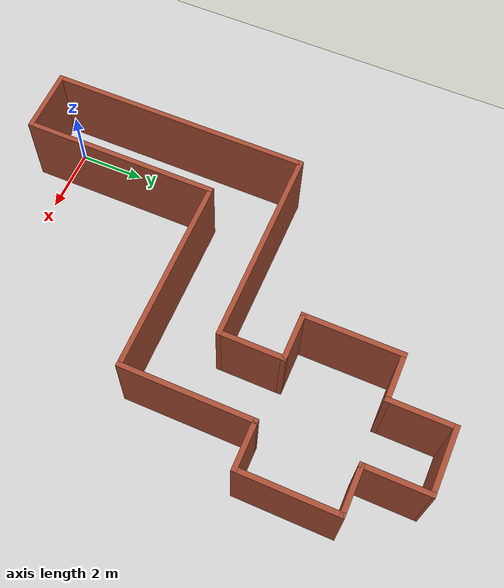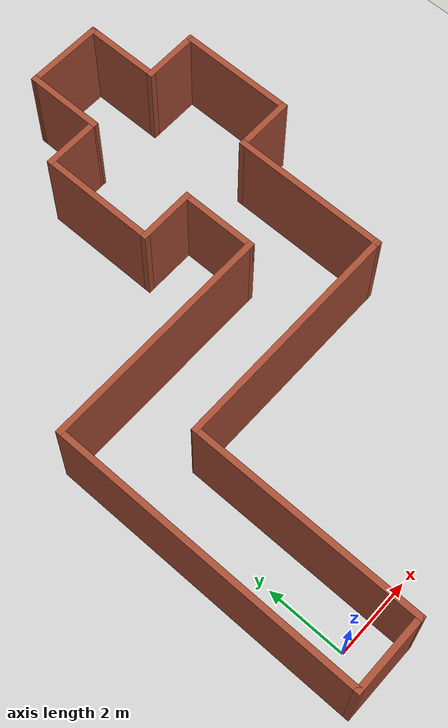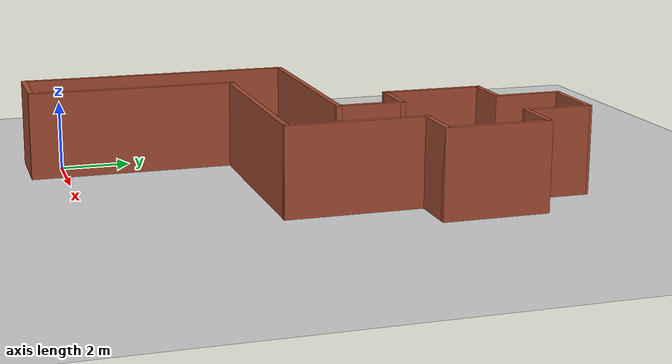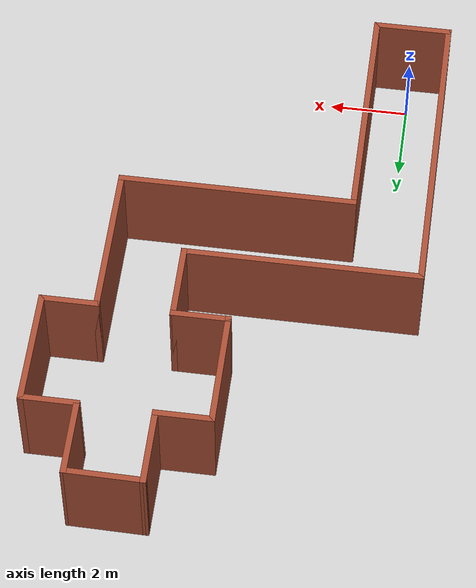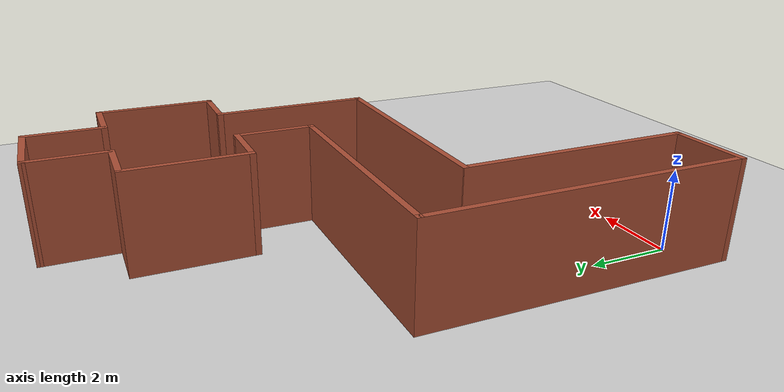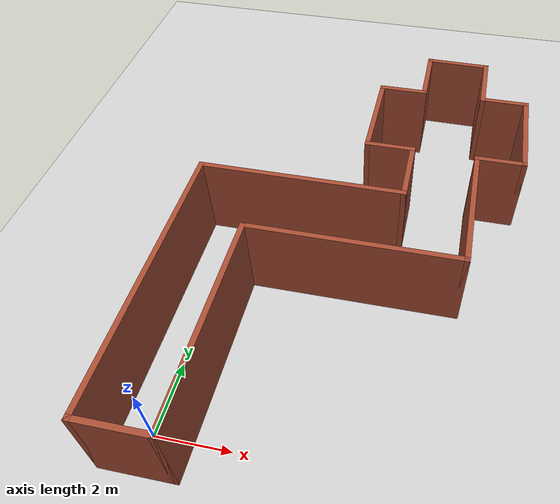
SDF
<sdf version="1.7">
 <world name="default">
  <light name="sun" type="directional">
   <pose>0 0 10 0 -0 0</pose>
   <diffuse>0.8 0.8 0.8 1</diffuse>
   <specular>0.2 0.2 0.2 1</specular>
   <attenuation>
    <range>1000</range>
    <constant>0.9</constant>
    <linear>0.01</linear>
    <quadratic>0.001</quadratic>
   </attenuation>
   <direction>-0.5 0.1 -0.9</direction>
   <spot><inner_angle>0</inner_angle><outer_angle>0</outer_angle><falloff>0</falloff></spot>
  </light>
  <model name="ground_plane">
   <static>1</static>
   <link name="link">
    <collision name="collision">
     <geometry><plane><normal>0 0 1</normal><size>100 100</size></plane></geometry>
     <surface><friction><ode><mu>100</mu><mu2>50</mu2></ode></friction></surface>
    </collision>
    <visual name="visual">
     <cast_shadows>0</cast_shadows>
     <geometry><plane><normal>0 0 1</normal><size>100 100</size></plane></geometry>
     <material>
      <script><uri>file://media/materials/scripts/gazebo.material</uri><name>Gazebo/Grey</name></script>
     </material>
    </visual>
   </link>
  </model>
  <gravity>0 0 -9.8</gravity>
  <magnetic_field>6e-06 2.3e-05 -4.2e-05</magnetic_field>
  <atmosphere type="adiabatic"/>
  <physics type="ode">
   <max_step_size>0.001</max_step_size>
   <real_time_factor>1</real_time_factor>
   <real_time_update_rate>1000</real_time_update_rate>
  </physics>
  <scene><ambient>0.4 0.4 0.4 1</ambient><background>0.7 0.7 0.7 1</background><shadows>1</shadows></scene>
  <audio><device>default</device></audio>
  <spherical_coordinates>
   <surface_model>EARTH_WGS84</surface_model>
   <latitude_deg>0</latitude_deg>
   <longitude_deg>0</longitude_deg>
   <elevation>0</elevation>
   <heading_deg>0</heading_deg>
  </spherical_coordinates>
  <model name="corridor_turns">
   <pose>3.62677 6.30359 0 0 -0 0</pose>
   <link name="Wall_0">
    <collision name="Wall_0_Collision">
     <geometry><box><size>2.02645 0.15 2.5</size></box></geometry>
     <pose>0 0 1.25 0 -0 0</pose>
    </collision>
    <visual name="Wall_0_Visual">
     <pose>0 0 1.25 0 -0 0</pose>
     <geometry><box><size>2.02645 0.15 2.5</size></box></geometry>
     <material>
      <script><uri>file://media/materials/scripts/gazebo.material</uri><name>Gazebo/Bricks</name></script>
      <ambient>1 1 1 1</ambient>
     </material>
     <meta><layer>0</layer></meta>
    </visual>
    <pose>-3.6 -7.20046 0 0 -0 0</pose>
   </link>
   <link name="Wall_13">
    <collision name="Wall_13_Collision">
     <geometry><box><size>6 0.15 2.5</size></box></geometry>
     <pose>0 0 1.25 0 -0 0</pose>
    </collision>
    <visual name="Wall_13_Visual">
     <pose>0 0 1.25 0 -0 0</pose>
     <geometry><box><size>6 0.15 2.5</size></box></geometry>
     <material>
      <script><uri>file://media/materials/scripts/gazebo.material</uri><name>Gazebo/Bricks</name></script>
      <ambient>1 1 1 1</ambient>
     </material>
     <meta><layer>0</layer></meta>
    </visual>
    <pose>-1.61322 0.649541 0 0 -0 0</pose>
   </link>
   <link name="Wall_14">
    <collision name="Wall_14_Collision">
     <geometry><box><size>2 0.15 2.5</size></box></geometry>
     <pose>0 0 1.25 0 -0 0</pose>
    </collision>
    <visual name="Wall_14_Visual">
     <pose>0 0 1.25 0 -0 0</pose>
     <geometry><box><size>2 0.15 2.5</size></box></geometry>
     <material>
      <script><uri>file://media/materials/scripts/gazebo.material</uri><name>Gazebo/Bricks</name></script>
      <ambient>1 1 1 1</ambient>
     </material>
     <meta><layer>0</layer></meta>
    </visual>
    <pose>1.31177 1.57454 0 0 -0 1.5708</pose>
   </link>
   <link name="Wall_15">
    <collision name="Wall_15_Collision">
     <geometry><box><size>1.5 0.15 2.5</size></box></geometry>
     <pose>0 0 1.25 0 -0 0</pose>
    </collision>
    <visual name="Wall_15_Visual">
     <pose>0 0 1.25 0 -0 0</pose>
     <geometry><box><size>1.5 0.15 2.5</size></box></geometry>
     <material>
      <script><uri>file://media/materials/scripts/gazebo.material</uri><name>Gazebo/Bricks</name></script>
      <ambient>1 1 1 1</ambient>
     </material>
     <meta><layer>0</layer></meta>
    </visual>
    <pose>0.636775 2.49954 0 0 -0 3.14159</pose>
   </link>
   <link name="Wall_17">
    <collision name="Wall_17_Collision">
     <geometry><box><size>4 0.15 2.5</size></box></geometry>
     <pose>0 0 1.25 0 -0 0</pose>
    </collision>
    <visual name="Wall_17_Visual">
     <pose>0 0 1.25 0 -0 0</pose>
     <geometry><box><size>4 0.15 2.5</size></box></geometry>
     <material>
      <script><uri>file://media/materials/scripts/gazebo.material</uri><name>Gazebo/Bricks</name></script>
      <ambient>1 1 1 1</ambient>
     </material>
     <meta><layer>0</layer></meta>
    </visual>
    <pose>3.18823 0.55141 0 0 -0 1.5708</pose>
   </link>
   <link name="Wall_18">
    <collision name="Wall_18_Collision">
     <geometry><box><size>1.5 0.15 2.5</size></box></geometry>
     <pose>0 0 1.25 0 -0 0</pose>
    </collision>
    <visual name="Wall_18_Visual">
     <pose>0 0 1.25 0 -0 0</pose>
     <geometry><box><size>1.5 0.15 2.5</size></box></geometry>
     <material>
      <script><uri>file://media/materials/scripts/gazebo.material</uri><name>Gazebo/Bricks</name></script>
      <ambient>1 1 1 1</ambient>
     </material>
     <meta><layer>0</layer></meta>
    </visual>
    <pose>3.86322 2.47641 0 0 -0 0</pose>
   </link>
   <link name="Wall_20">
    <collision name="Wall_20_Collision">
     <geometry><box><size>3 0.15 2.5</size></box></geometry>
     <pose>0 0 1.25 0 -0 0</pose>
    </collision>
    <visual name="Wall_20_Visual">
     <pose>0 0 1.25 0 -0 0</pose>
     <geometry><box><size>3 0.15 2.5</size></box></geometry>
     <material>
      <script><uri>file://media/materials/scripts/gazebo.material</uri><name>Gazebo/Bricks</name></script>
      <ambient>1 1 1 1</ambient>
     </material>
     <meta><layer>0</layer></meta>
    </visual>
    <pose>-0.038225 3.92454 0 0 -0 1.5708</pose>
   </link>
   <link name="Wall_21">
    <collision name="Wall_21_Collision">
     <geometry><box><size>1.5 0.15 2.5</size></box></geometry>
     <pose>0 0 1.25 0 -0 0</pose>
    </collision>
    <visual name="Wall_21_Visual">
     <pose>0 0 1.25 0 -0 0</pose>
     <geometry><box><size>1.5 0.15 2.5</size></box></geometry>
     <material>
      <script><uri>file://media/materials/scripts/gazebo.material</uri><name>Gazebo/Bricks</name></script>
      <ambient>1 1 1 1</ambient>
     </material>
     <meta><layer>0</layer></meta>
    </visual>
    <pose>0.636775 5.34954 0 0 -0 0</pose>
   </link>
   <link name="Wall_22">
    <collision name="Wall_22_Collision">
     <geometry><box><size>2 0.15 2.5</size></box></geometry>
     <pose>0 0 1.25 0 -0 0</pose>
    </collision>
    <visual name="Wall_22_Visual">
     <pose>0 0 1.25 0 -0 0</pose>
     <geometry><box><size>2 0.15 2.5</size></box></geometry>
     <material>
      <script><uri>file://media/materials/scripts/gazebo.material</uri><name>Gazebo/Bricks</name></script>
      <ambient>1 1 1 1</ambient>
     </material>
     <meta><layer>0</layer></meta>
    </visual>
    <pose>1.31177 6.27454 0 0 -0 1.5708</pose>
   </link>
   <link name="Wall_24">
    <collision name="Wall_24_Collision">
     <geometry><box><size>3 0.15 2.5</size></box></geometry>
     <pose>0 0 1.25 0 -0 0</pose>
    </collision>
    <visual name="Wall_24_Visual">
     <pose>0 0 1.25 0 -0 0</pose>
     <geometry><box><size>3 0.15 2.5</size></box></geometry>
     <material>
      <script><uri>file://media/materials/scripts/gazebo.material</uri><name>Gazebo/Bricks</name></script>
      <ambient>1 1 1 1</ambient>
     </material>
     <meta><layer>0</layer></meta>
    </visual>
    <pose>4.53823 3.90141 0 0 -0 1.5708</pose>
   </link>
   <link name="Wall_25">
    <collision name="Wall_25_Collision">
     <geometry><box><size>1.5 0.15 2.5</size></box></geometry>
     <pose>0 0 1.25 0 -0 0</pose>
    </collision>
    <visual name="Wall_25_Visual">
     <pose>0 0 1.25 0 -0 0</pose>
     <geometry><box><size>1.5 0.15 2.5</size></box></geometry>
     <material>
      <script><uri>file://media/materials/scripts/gazebo.material</uri><name>Gazebo/Bricks</name></script>
      <ambient>1 1 1 1</ambient>
     </material>
     <meta><layer>0</layer></meta>
    </visual>
    <pose>3.86322 5.32641 0 0 -0 3.14159</pose>
   </link>
   <link name="Wall_26">
    <collision name="Wall_26_Collision">
     <geometry><box><size>2 0.15 2.5</size></box></geometry>
     <pose>0 0 1.25 0 -0 0</pose>
    </collision>
    <visual name="Wall_26_Visual">
     <pose>0 0 1.25 0 -0 0</pose>
     <geometry><box><size>2 0.15 2.5</size></box></geometry>
     <material>
      <script><uri>file://media/materials/scripts/gazebo.material</uri><name>Gazebo/Bricks</name></script>
      <ambient>1 1 1 1</ambient>
     </material>
     <meta><layer>0</layer></meta>
    </visual>
    <pose>3.18823 6.25141 0 0 -0 1.5708</pose>
   </link>
   <link name="Wall_27">
    <collision name="Wall_27_Collision">
     <geometry><box><size>2.02659 0.15 2.5</size></box></geometry>
     <pose>0 0 1.25 0 -0 0</pose>
    </collision>
    <visual name="Wall_27_Visual">
     <pose>0 0 1.25 0 -0 0</pose>
     <geometry><box><size>2.02659 0.15 2.5</size></box></geometry>
     <material>
      <script><uri>file://media/materials/scripts/gazebo.material</uri><name>Gazebo/Bricks</name></script>
      <ambient>1 1 1 1</ambient>
     </material>
     <meta><layer>0</layer></meta>
    </visual>
    <pose>2.25 7.18797 0 0 -0 3.12927</pose>
   </link>
   <link name="Wall_4">
    <collision name="Wall_4_Collision">
     <geometry><box><size>5.95374 0.15 2.5</size></box></geometry>
     <pose>0 0 1.25 0 -0 0</pose>
    </collision>
    <visual name="Wall_4_Visual">
     <pose>0 0 1.25 0 -0 0</pose>
     <geometry><box><size>5.95374 0.15 2.5</size></box></geometry>
     <material>
      <script><uri>file://media/materials/scripts/gazebo.material</uri><name>Gazebo/Bricks</name></script>
      <ambient>1 1 1 1</ambient>
     </material>
     <meta><layer>0</layer></meta>
    </visual>
    <pose>-2.66178 -4.29859 0 0 -0 1.5708</pose>
   </link>
   <link name="Wall_6">
    <collision name="Wall_6_Collision">
     <geometry><box><size>6 0.15 2.5</size></box></geometry>
     <pose>0 0 1.25 0 -0 0</pose>
    </collision>
    <visual name="Wall_6_Visual">
     <pose>0 0 1.25 0 -0 0</pose>
     <geometry><box><size>6 0.15 2.5</size></box></geometry>
     <material>
      <script><uri>file://media/materials/scripts/gazebo.material</uri><name>Gazebo/Bricks</name></script>
      <ambient>1 1 1 1</ambient>
     </material>
     <meta><layer>0</layer></meta>
    </visual>
    <pose>0.263225 -1.37359 0 0 -0 0</pose>
   </link>
   <link name="Wall_9">
    <collision name="Wall_9_Collision">
     <geometry><box><size>8 0.15 2.5</size></box></geometry>
     <pose>0 0 1.25 0 -0 0</pose>
    </collision>
    <visual name="Wall_9_Visual">
     <pose>0 0 1.25 0 -0 0</pose>
     <geometry><box><size>8 0.15 2.5</size></box></geometry>
     <material>
      <script><uri>file://media/materials/scripts/gazebo.material</uri><name>Gazebo/Bricks</name></script>
      <ambient>1 1 1 1</ambient>
     </material>
     <meta><layer>0</layer></meta>
    </visual>
    <pose>-4.53822 -3.27546 0 0 -0 1.5708</pose>
   </link>
   <static>1</static>
  </model>
 </world>
</sdf>
